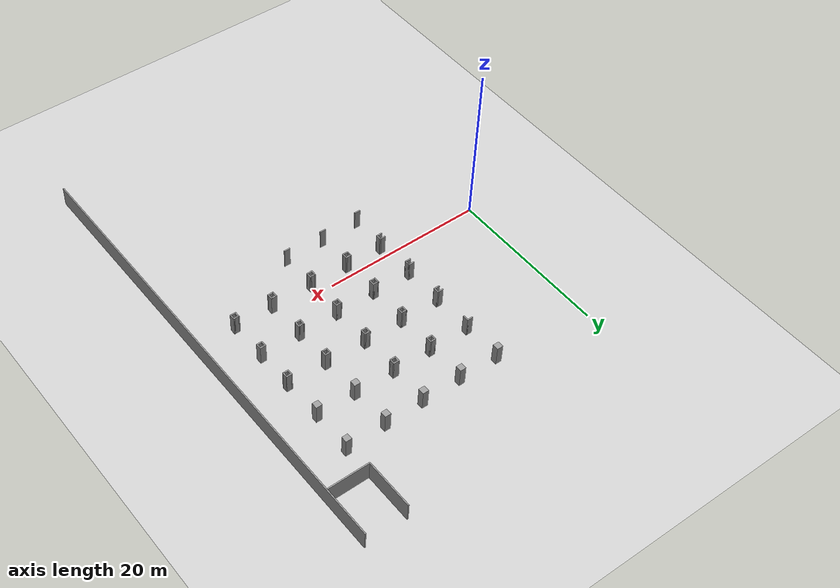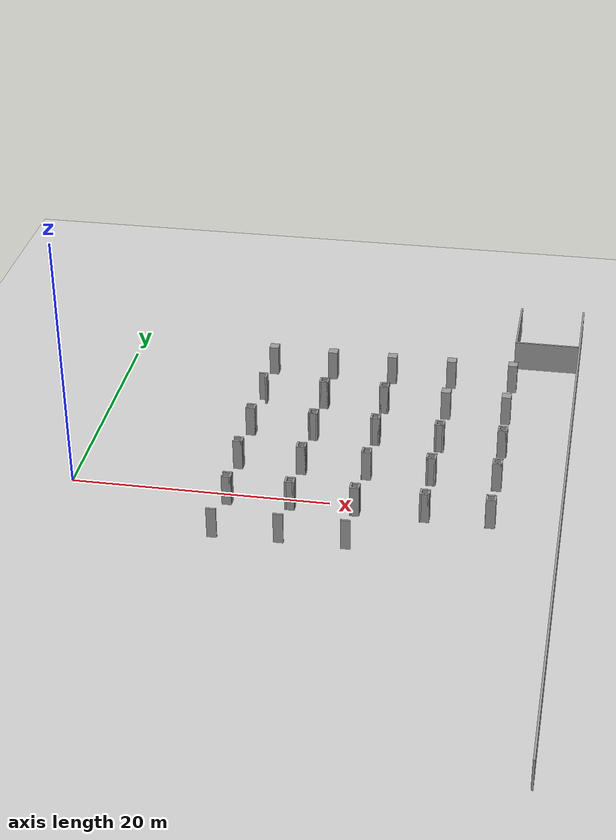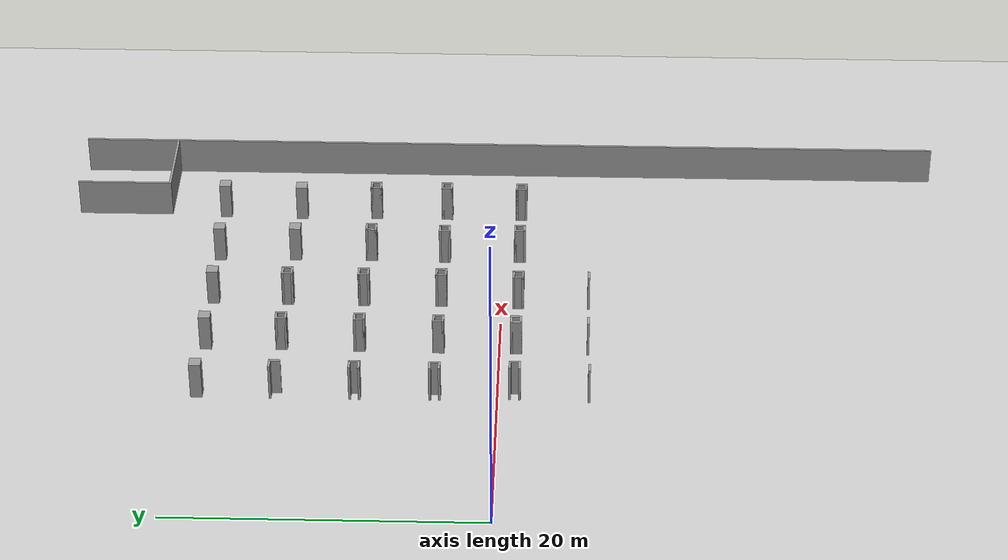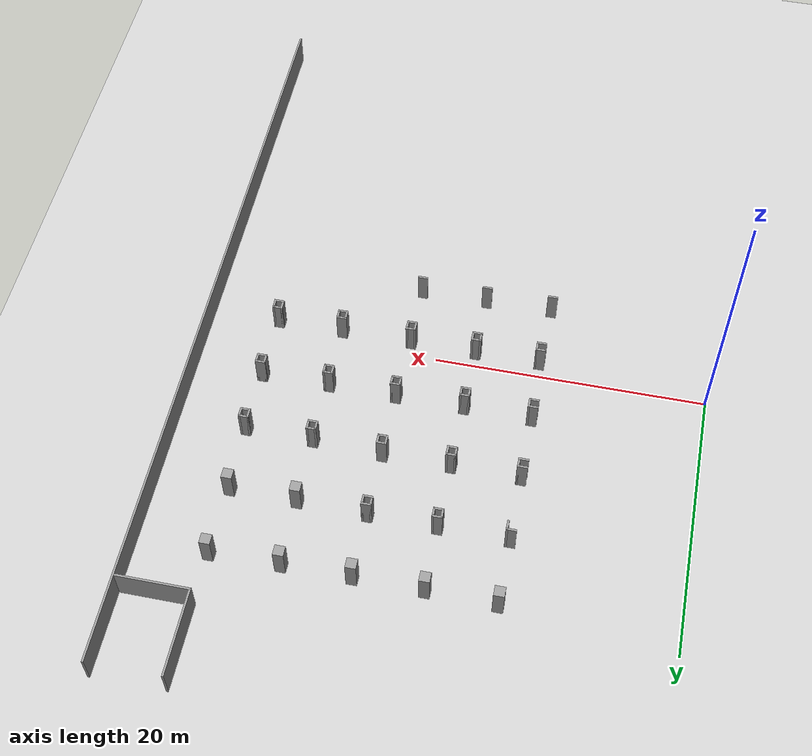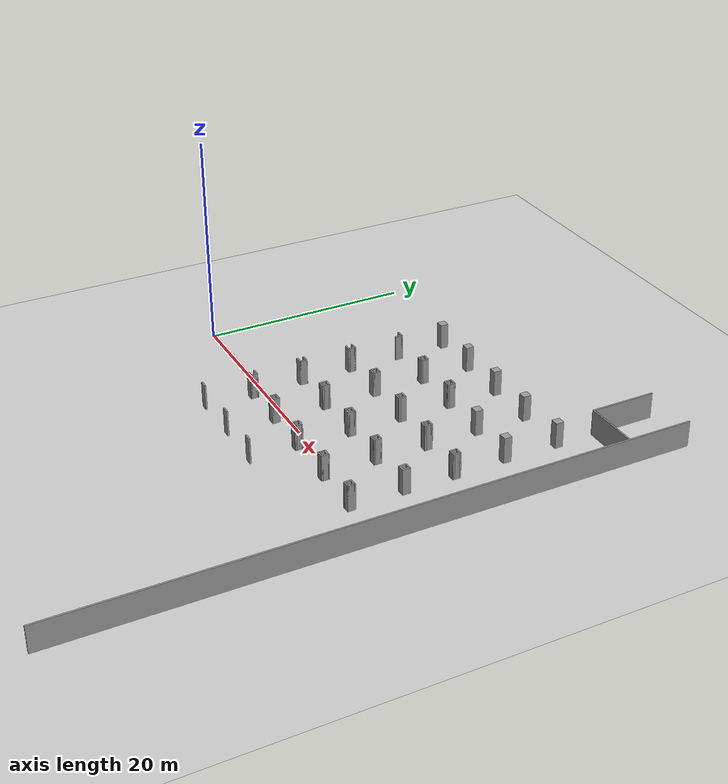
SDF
<sdf version="1.6">
 <world name="default">
  <model name="ground_plane">
   <static>1</static>
   <link name="link">
    <collision name="collision">
     <geometry><plane><normal>0 0 1</normal><size>100 100</size></plane></geometry>
     <surface>
      <contact><collide_bitmask>65535</collide_bitmask></contact>
      <friction><ode><mu>100</mu><mu2>50</mu2></ode></friction>
     </surface>
    </collision>
    <visual name="visual">
     <cast_shadows>0</cast_shadows>
     <geometry><plane><normal>0 0 1</normal><size>100 100</size></plane></geometry>
     <material>
      <script><uri>file://media/materials/scripts/gazebo.material</uri><name>Gazebo/Grey</name></script>
     </material>
    </visual>
   </link>
  </model>
  <model name="parking_area_big">
   <pose>0.030669 -0.012869 0 0 -0 0</pose>
   <link name="Wall_100">
    <collision name="Wall_100_Collision">
     <geometry><box><size>0.75 0.15 2.5</size></box></geometry>
     <pose>0 0 1.25 0 -0 0</pose>
    </collision>
    <visual name="Wall_100_Visual">
     <pose>0 0 1.25 0 -0 0</pose>
     <geometry><box><size>0.75 0.15 2.5</size></box></geometry>
     <material>
      <script><uri>file://media/materials/scripts/gazebo.material</uri><name>Gazebo/Grey</name></script>
      <ambient>1 1 1 1</ambient>
     </material>
     <meta><layer>0</layer></meta>
    </visual>
    <pose>27.266 -0.720336 0 0 -0 0</pose>
   </link>
   <link name="Wall_101">
    <collision name="Wall_101_Collision">
     <geometry><box><size>0.75 0.15 2.5</size></box></geometry>
     <pose>0 0 1.25 0 -0 0</pose>
    </collision>
    <visual name="Wall_101_Visual">
     <pose>0 0 1.25 0 -0 0</pose>
     <geometry><box><size>0.75 0.15 2.5</size></box></geometry>
     <material>
      <script><uri>file://media/materials/scripts/gazebo.material</uri><name>Gazebo/Grey</name></script>
      <ambient>1 1 1 1</ambient>
     </material>
     <meta><layer>0</layer></meta>
    </visual>
    <pose>27.566 -1.02034 0 0 -0 -1.5708</pose>
   </link>
   <link name="Wall_102">
    <collision name="Wall_102_Collision">
     <geometry><box><size>0.75 0.15 2.5</size></box></geometry>
     <pose>0 0 1.25 0 -0 0</pose>
    </collision>
    <visual name="Wall_102_Visual">
     <pose>0 0 1.25 0 -0 0</pose>
     <geometry><box><size>0.75 0.15 2.5</size></box></geometry>
     <material>
      <script><uri>file://media/materials/scripts/gazebo.material</uri><name>Gazebo/Grey</name></script>
      <ambient>1 1 1 1</ambient>
     </material>
     <meta><layer>0</layer></meta>
    </visual>
    <pose>27.266 -1.32034 0 0 -0 3.14159</pose>
   </link>
   <link name="Wall_103">
    <collision name="Wall_103_Collision">
     <geometry><box><size>0.75 0.15 2.5</size></box></geometry>
     <pose>0 0 1.25 0 -0 0</pose>
    </collision>
    <visual name="Wall_103_Visual">
     <pose>0 0 1.25 0 -0 0</pose>
     <geometry><box><size>0.75 0.15 2.5</size></box></geometry>
     <material>
      <script><uri>file://media/materials/scripts/gazebo.material</uri><name>Gazebo/Grey</name></script>
      <ambient>1 1 1 1</ambient>
     </material>
     <meta><layer>0</layer></meta>
    </visual>
    <pose>26.966 -1.02034 0 0 -0 1.5708</pose>
   </link>
   <link name="Wall_105">
    <collision name="Wall_105_Collision">
     <geometry><box><size>0.75 0.15 2.5</size></box></geometry>
     <pose>0 0 1.25 0 -0 0</pose>
    </collision>
    <visual name="Wall_105_Visual">
     <pose>0 0 1.25 0 -0 0</pose>
     <geometry><box><size>0.75 0.15 2.5</size></box></geometry>
     <material>
      <script><uri>file://media/materials/scripts/gazebo.material</uri><name>Gazebo/Grey</name></script>
      <ambient>1 1 1 1</ambient>
     </material>
     <meta><layer>0</layer></meta>
    </visual>
    <pose>32.1551 -0.719051 0 0 -0 0</pose>
   </link>
   <link name="Wall_106">
    <collision name="Wall_106_Collision">
     <geometry><box><size>0.75 0.15 2.5</size></box></geometry>
     <pose>0 0 1.25 0 -0 0</pose>
    </collision>
    <visual name="Wall_106_Visual">
     <pose>0 0 1.25 0 -0 0</pose>
     <geometry><box><size>0.75 0.15 2.5</size></box></geometry>
     <material>
      <script><uri>file://media/materials/scripts/gazebo.material</uri><name>Gazebo/Grey</name></script>
      <ambient>1 1 1 1</ambient>
     </material>
     <meta><layer>0</layer></meta>
    </visual>
    <pose>32.4551 -1.01905 0 0 -0 -1.5708</pose>
   </link>
   <link name="Wall_107">
    <collision name="Wall_107_Collision">
     <geometry><box><size>0.75 0.15 2.5</size></box></geometry>
     <pose>0 0 1.25 0 -0 0</pose>
    </collision>
    <visual name="Wall_107_Visual">
     <pose>0 0 1.25 0 -0 0</pose>
     <geometry><box><size>0.75 0.15 2.5</size></box></geometry>
     <material>
      <script><uri>file://media/materials/scripts/gazebo.material</uri><name>Gazebo/Grey</name></script>
      <ambient>1 1 1 1</ambient>
     </material>
     <meta><layer>0</layer></meta>
    </visual>
    <pose>32.1551 -1.31905 0 0 -0 3.14159</pose>
   </link>
   <link name="Wall_108">
    <collision name="Wall_108_Collision">
     <geometry><box><size>0.75 0.15 2.5</size></box></geometry>
     <pose>0 0 1.25 0 -0 0</pose>
    </collision>
    <visual name="Wall_108_Visual">
     <pose>0 0 1.25 0 -0 0</pose>
     <geometry><box><size>0.75 0.15 2.5</size></box></geometry>
     <material>
      <script><uri>file://media/materials/scripts/gazebo.material</uri><name>Gazebo/Grey</name></script>
      <ambient>1 1 1 1</ambient>
     </material>
     <meta><layer>0</layer></meta>
    </visual>
    <pose>31.8551 -1.01905 0 0 -0 1.5708</pose>
   </link>
   <link name="Wall_168">
    <collision name="Wall_168_Collision">
     <geometry><box><size>0.75 0.15 2.5</size></box></geometry>
     <pose>0 0 1.25 0 -0 0</pose>
    </collision>
    <visual name="Wall_168_Visual">
     <pose>0 0 1.25 0 -0 0</pose>
     <geometry><box><size>0.75 0.15 2.5</size></box></geometry>
     <material>
      <script><uri>file://media/materials/scripts/gazebo.material</uri><name>Gazebo/Grey</name></script>
      <ambient>1 1 1 1</ambient>
     </material>
     <meta><layer>0</layer></meta>
    </visual>
    <pose>12.3546 -0.734004 0 0 -0 0</pose>
   </link>
   <link name="Wall_169">
    <collision name="Wall_169_Collision">
     <geometry><box><size>0.75 0.15 2.5</size></box></geometry>
     <pose>0 0 1.25 0 -0 0</pose>
    </collision>
    <visual name="Wall_169_Visual">
     <pose>0 0 1.25 0 -0 0</pose>
     <geometry><box><size>0.75 0.15 2.5</size></box></geometry>
     <material>
      <script><uri>file://media/materials/scripts/gazebo.material</uri><name>Gazebo/Grey</name></script>
      <ambient>1 1 1 1</ambient>
     </material>
     <meta><layer>0</layer></meta>
    </visual>
    <pose>12.6546 -1.034 0 0 -0 -1.5708</pose>
   </link>
   <link name="Wall_170">
    <collision name="Wall_170_Collision">
     <geometry><box><size>0.75 0.15 2.5</size></box></geometry>
     <pose>0 0 1.25 0 -0 0</pose>
    </collision>
    <visual name="Wall_170_Visual">
     <pose>0 0 1.25 0 -0 0</pose>
     <geometry><box><size>0.75 0.15 2.5</size></box></geometry>
     <material>
      <script><uri>file://media/materials/scripts/gazebo.material</uri><name>Gazebo/Grey</name></script>
      <ambient>1 1 1 1</ambient>
     </material>
     <meta><layer>0</layer></meta>
    </visual>
    <pose>12.3546 -1.334 0 0 -0 3.14159</pose>
   </link>
   <link name="Wall_178">
    <collision name="Wall_178_Collision">
     <geometry><box><size>0.75 0.15 2.5</size></box></geometry>
     <pose>0 0 1.25 0 -0 0</pose>
    </collision>
    <visual name="Wall_178_Visual">
     <pose>0 0 1.25 0 -0 0</pose>
     <geometry><box><size>0.75 0.15 2.5</size></box></geometry>
     <material>
      <script><uri>file://media/materials/scripts/gazebo.material</uri><name>Gazebo/Grey</name></script>
      <ambient>1 1 1 1</ambient>
     </material>
     <meta><layer>0</layer></meta>
    </visual>
    <pose>12.1706 -5.679 0 0 -0 0</pose>
   </link>
   <link name="Wall_18">
    <collision name="Wall_18_Collision">
     <geometry><box><size>57.75 0.15 2.5</size></box></geometry>
     <pose>0 0 1.25 0 -0 0</pose>
    </collision>
    <visual name="Wall_18_Visual">
     <pose>0 0 1.25 0 -0 0</pose>
     <geometry><box><size>57.75 0.15 2.5</size></box></geometry>
     <material>
      <script><uri>file://media/materials/scripts/gazebo.material</uri><name>Gazebo/Grey</name></script>
      <ambient>1 1 1 1</ambient>
     </material>
     <meta><layer>0</layer></meta>
    </visual>
    <pose>37.3314 0.011069 0 0 -0 -1.5708</pose>
   </link>
   <link name="Wall_183">
    <collision name="Wall_183_Collision">
     <geometry><box><size>0.75 0.15 2.5</size></box></geometry>
     <pose>0 0 1.25 0 -0 0</pose>
    </collision>
    <visual name="Wall_183_Visual">
     <pose>0 0 1.25 0 -0 0</pose>
     <geometry><box><size>0.75 0.15 2.5</size></box></geometry>
     <material>
      <script><uri>file://media/materials/scripts/gazebo.material</uri><name>Gazebo/Grey</name></script>
      <ambient>1 1 1 1</ambient>
     </material>
     <meta><layer>0</layer></meta>
    </visual>
    <pose>17.1156 -5.587 0 0 -0 0</pose>
   </link>
   <link name="Wall_188">
    <collision name="Wall_188_Collision">
     <geometry><box><size>0.75 0.15 2.5</size></box></geometry>
     <pose>0 0 1.25 0 -0 0</pose>
    </collision>
    <visual name="Wall_188_Visual">
     <pose>0 0 1.25 0 -0 0</pose>
     <geometry><box><size>0.75 0.15 2.5</size></box></geometry>
     <material>
      <script><uri>file://media/materials/scripts/gazebo.material</uri><name>Gazebo/Grey</name></script>
      <ambient>1 1 1 1</ambient>
     </material>
     <meta><layer>0</layer></meta>
    </visual>
    <pose>22.0606 -5.587 0 0 -0 0</pose>
   </link>
   <link name="Wall_193">
    <collision name="Wall_193_Collision">
     <geometry><box><size>0.75 0.15 2.5</size></box></geometry>
     <pose>0 0 1.25 0 -0 0</pose>
    </collision>
    <visual name="Wall_193_Visual">
     <pose>0 0 1.25 0 -0 0</pose>
     <geometry><box><size>0.75 0.15 2.5</size></box></geometry>
     <material>
      <script><uri>file://media/materials/scripts/gazebo.material</uri><name>Gazebo/Grey</name></script>
      <ambient>1 1 1 1</ambient>
     </material>
     <meta><layer>0</layer></meta>
    </visual>
    <pose>22.0376 -0.734004 0 0 -0 0</pose>
   </link>
   <link name="Wall_194">
    <collision name="Wall_194_Collision">
     <geometry><box><size>0.75 0.15 2.5</size></box></geometry>
     <pose>0 0 1.25 0 -0 0</pose>
    </collision>
    <visual name="Wall_194_Visual">
     <pose>0 0 1.25 0 -0 0</pose>
     <geometry><box><size>0.75 0.15 2.5</size></box></geometry>
     <material>
      <script><uri>file://media/materials/scripts/gazebo.material</uri><name>Gazebo/Grey</name></script>
      <ambient>1 1 1 1</ambient>
     </material>
     <meta><layer>0</layer></meta>
    </visual>
    <pose>22.3376 -1.034 0 0 -0 -1.5708</pose>
   </link>
   <link name="Wall_195">
    <collision name="Wall_195_Collision">
     <geometry><box><size>0.75 0.15 2.5</size></box></geometry>
     <pose>0 0 1.25 0 -0 0</pose>
    </collision>
    <visual name="Wall_195_Visual">
     <pose>0 0 1.25 0 -0 0</pose>
     <geometry><box><size>0.75 0.15 2.5</size></box></geometry>
     <material>
      <script><uri>file://media/materials/scripts/gazebo.material</uri><name>Gazebo/Grey</name></script>
      <ambient>1 1 1 1</ambient>
     </material>
     <meta><layer>0</layer></meta>
    </visual>
    <pose>22.0376 -1.334 0 0 -0 3.14159</pose>
   </link>
   <link name="Wall_196">
    <collision name="Wall_196_Collision">
     <geometry><box><size>0.75 0.15 2.5</size></box></geometry>
     <pose>0 0 1.25 0 -0 0</pose>
    </collision>
    <visual name="Wall_196_Visual">
     <pose>0 0 1.25 0 -0 0</pose>
     <geometry><box><size>0.75 0.15 2.5</size></box></geometry>
     <material>
      <script><uri>file://media/materials/scripts/gazebo.material</uri><name>Gazebo/Grey</name></script>
      <ambient>1 1 1 1</ambient>
     </material>
     <meta><layer>0</layer></meta>
    </visual>
    <pose>21.7376 -1.034 0 0 -0 1.5708</pose>
   </link>
   <link name="Wall_198">
    <collision name="Wall_198_Collision">
     <geometry><box><size>0.75 0.15 2.5</size></box></geometry>
     <pose>0 0 1.25 0 -0 0</pose>
    </collision>
    <visual name="Wall_198_Visual">
     <pose>0 0 1.25 0 -0 0</pose>
     <geometry><box><size>0.75 0.15 2.5</size></box></geometry>
     <material>
      <script><uri>file://media/materials/scripts/gazebo.material</uri><name>Gazebo/Grey</name></script>
      <ambient>1 1 1 1</ambient>
     </material>
     <meta><layer>0</layer></meta>
    </visual>
    <pose>17.1386 -0.711004 0 0 -0 0</pose>
   </link>
   <link name="Wall_199">
    <collision name="Wall_199_Collision">
     <geometry><box><size>0.75 0.15 2.5</size></box></geometry>
     <pose>0 0 1.25 0 -0 0</pose>
    </collision>
    <visual name="Wall_199_Visual">
     <pose>0 0 1.25 0 -0 0</pose>
     <geometry><box><size>0.75 0.15 2.5</size></box></geometry>
     <material>
      <script><uri>file://media/materials/scripts/gazebo.material</uri><name>Gazebo/Grey</name></script>
      <ambient>1 1 1 1</ambient>
     </material>
     <meta><layer>0</layer></meta>
    </visual>
    <pose>17.4386 -1.011 0 0 -0 -1.5708</pose>
   </link>
   <link name="Wall_200">
    <collision name="Wall_200_Collision">
     <geometry><box><size>0.75 0.15 2.5</size></box></geometry>
     <pose>0 0 1.25 0 -0 0</pose>
    </collision>
    <visual name="Wall_200_Visual">
     <pose>0 0 1.25 0 -0 0</pose>
     <geometry><box><size>0.75 0.15 2.5</size></box></geometry>
     <material>
      <script><uri>file://media/materials/scripts/gazebo.material</uri><name>Gazebo/Grey</name></script>
      <ambient>1 1 1 1</ambient>
     </material>
     <meta><layer>0</layer></meta>
    </visual>
    <pose>17.1386 -1.311 0 0 -0 3.14159</pose>
   </link>
   <link name="Wall_201">
    <collision name="Wall_201_Collision">
     <geometry><box><size>0.75 0.15 2.5</size></box></geometry>
     <pose>0 0 1.25 0 -0 0</pose>
    </collision>
    <visual name="Wall_201_Visual">
     <pose>0 0 1.25 0 -0 0</pose>
     <geometry><box><size>0.75 0.15 2.5</size></box></geometry>
     <material>
      <script><uri>file://media/materials/scripts/gazebo.material</uri><name>Gazebo/Grey</name></script>
      <ambient>1 1 1 1</ambient>
     </material>
     <meta><layer>0</layer></meta>
    </visual>
    <pose>16.8386 -1.011 0 0 -0 1.5708</pose>
   </link>
   <link name="Wall_243">
    <collision name="Wall_243_Collision">
     <geometry><box><size>0.75 0.15 2.5</size></box></geometry>
     <pose>0 0 1.25 0 -0 0</pose>
    </collision>
    <visual name="Wall_243_Visual">
     <pose>0 0 1.25 0 -0 0</pose>
     <geometry><box><size>0.75 0.15 2.5</size></box></geometry>
     <material>
      <script><uri>file://media/materials/scripts/gazebo.material</uri><name>Gazebo/Grey</name></script>
      <ambient>1 1 1 1</ambient>
     </material>
     <meta><layer>0</layer></meta>
    </visual>
    <pose>12.1724 4.25145 0 0 -0 0</pose>
   </link>
   <link name="Wall_244">
    <collision name="Wall_244_Collision">
     <geometry><box><size>0.75 0.15 2.5</size></box></geometry>
     <pose>0 0 1.25 0 -0 0</pose>
    </collision>
    <visual name="Wall_244_Visual">
     <pose>0 0 1.25 0 -0 0</pose>
     <geometry><box><size>0.75 0.15 2.5</size></box></geometry>
     <material>
      <script><uri>file://media/materials/scripts/gazebo.material</uri><name>Gazebo/Grey</name></script>
      <ambient>1 1 1 1</ambient>
     </material>
     <meta><layer>0</layer></meta>
    </visual>
    <pose>12.4724 3.95145 0 0 -0 -1.5708</pose>
   </link>
   <link name="Wall_245">
    <collision name="Wall_245_Collision">
     <geometry><box><size>0.75 0.15 2.5</size></box></geometry>
     <pose>0 0 1.25 0 -0 0</pose>
    </collision>
    <visual name="Wall_245_Visual">
     <pose>0 0 1.25 0 -0 0</pose>
     <geometry><box><size>0.75 0.15 2.5</size></box></geometry>
     <material>
      <script><uri>file://media/materials/scripts/gazebo.material</uri><name>Gazebo/Grey</name></script>
      <ambient>1 1 1 1</ambient>
     </material>
     <meta><layer>0</layer></meta>
    </visual>
    <pose>12.1724 3.65145 0 0 -0 3.14159</pose>
   </link>
   <link name="Wall_248">
    <collision name="Wall_248_Collision">
     <geometry><box><size>0.75 0.15 2.5</size></box></geometry>
     <pose>0 0 1.25 0 -0 0</pose>
    </collision>
    <visual name="Wall_248_Visual">
     <pose>0 0 1.25 0 -0 0</pose>
     <geometry><box><size>0.75 0.15 2.5</size></box></geometry>
     <material>
      <script><uri>file://media/materials/scripts/gazebo.material</uri><name>Gazebo/Grey</name></script>
      <ambient>1 1 1 1</ambient>
     </material>
     <meta><layer>0</layer></meta>
    </visual>
    <pose>12.1459 9.2505 0 0 -0 0</pose>
   </link>
   <link name="Wall_249">
    <collision name="Wall_249_Collision">
     <geometry><box><size>0.75 0.15 2.5</size></box></geometry>
     <pose>0 0 1.25 0 -0 0</pose>
    </collision>
    <visual name="Wall_249_Visual">
     <pose>0 0 1.25 0 -0 0</pose>
     <geometry><box><size>0.75 0.15 2.5</size></box></geometry>
     <material>
      <script><uri>file://media/materials/scripts/gazebo.material</uri><name>Gazebo/Grey</name></script>
      <ambient>1 1 1 1</ambient>
     </material>
     <meta><layer>0</layer></meta>
    </visual>
    <pose>12.4459 8.9505 0 0 -0 -1.5708</pose>
   </link>
   <link name="Wall_250">
    <collision name="Wall_250_Collision">
     <geometry><box><size>0.75 0.15 2.5</size></box></geometry>
     <pose>0 0 1.25 0 -0 0</pose>
    </collision>
    <visual name="Wall_250_Visual">
     <pose>0 0 1.25 0 -0 0</pose>
     <geometry><box><size>0.75 0.15 2.5</size></box></geometry>
     <material>
      <script><uri>file://media/materials/scripts/gazebo.material</uri><name>Gazebo/Grey</name></script>
      <ambient>1 1 1 1</ambient>
     </material>
     <meta><layer>0</layer></meta>
    </visual>
    <pose>12.1459 8.6505 0 0 -0 3.14159</pose>
   </link>
   <link name="Wall_253">
    <collision name="Wall_253_Collision">
     <geometry><box><size>0.75 0.15 2.5</size></box></geometry>
     <pose>0 0 1.25 0 -0 0</pose>
    </collision>
    <visual name="Wall_253_Visual">
     <pose>0 0 1.25 0 -0 0</pose>
     <geometry><box><size>0.75 0.15 2.5</size></box></geometry>
     <material>
      <script><uri>file://media/materials/scripts/gazebo.material</uri><name>Gazebo/Grey</name></script>
      <ambient>1 1 1 1</ambient>
     </material>
     <meta><layer>0</layer></meta>
    </visual>
    <pose>17.1714 9.2505 0 0 -0 0</pose>
   </link>
   <link name="Wall_254">
    <collision name="Wall_254_Collision">
     <geometry><box><size>0.75 0.15 2.5</size></box></geometry>
     <pose>0 0 1.25 0 -0 0</pose>
    </collision>
    <visual name="Wall_254_Visual">
     <pose>0 0 1.25 0 -0 0</pose>
     <geometry><box><size>0.75 0.15 2.5</size></box></geometry>
     <material>
      <script><uri>file://media/materials/scripts/gazebo.material</uri><name>Gazebo/Grey</name></script>
      <ambient>1 1 1 1</ambient>
     </material>
     <meta><layer>0</layer></meta>
    </visual>
    <pose>17.4714 8.9505 0 0 -0 -1.5708</pose>
   </link>
   <link name="Wall_255">
    <collision name="Wall_255_Collision">
     <geometry><box><size>0.75 0.15 2.5</size></box></geometry>
     <pose>0 0 1.25 0 -0 0</pose>
    </collision>
    <visual name="Wall_255_Visual">
     <pose>0 0 1.25 0 -0 0</pose>
     <geometry><box><size>0.75 0.15 2.5</size></box></geometry>
     <material>
      <script><uri>file://media/materials/scripts/gazebo.material</uri><name>Gazebo/Grey</name></script>
      <ambient>1 1 1 1</ambient>
     </material>
     <meta><layer>0</layer></meta>
    </visual>
    <pose>17.1714 8.6505 0 0 -0 3.14159</pose>
   </link>
   <link name="Wall_256">
    <collision name="Wall_256_Collision">
     <geometry><box><size>0.75 0.15 2.5</size></box></geometry>
     <pose>0 0 1.25 0 -0 0</pose>
    </collision>
    <visual name="Wall_256_Visual">
     <pose>0 0 1.25 0 -0 0</pose>
     <geometry><box><size>0.75 0.15 2.5</size></box></geometry>
     <material>
      <script><uri>file://media/materials/scripts/gazebo.material</uri><name>Gazebo/Grey</name></script>
      <ambient>1 1 1 1</ambient>
     </material>
     <meta><layer>0</layer></meta>
    </visual>
    <pose>16.8714 8.9505 0 0 -0 1.5708</pose>
   </link>
   <link name="Wall_258">
    <collision name="Wall_258_Collision">
     <geometry><box><size>0.75 0.15 2.5</size></box></geometry>
     <pose>0 0 1.25 0 -0 0</pose>
    </collision>
    <visual name="Wall_258_Visual">
     <pose>0 0 1.25 0 -0 0</pose>
     <geometry><box><size>0.75 0.15 2.5</size></box></geometry>
     <material>
      <script><uri>file://media/materials/scripts/gazebo.material</uri><name>Gazebo/Grey</name></script>
      <ambient>1 1 1 1</ambient>
     </material>
     <meta><layer>0</layer></meta>
    </visual>
    <pose>22.1176 9.27695 0 0 -0 0</pose>
   </link>
   <link name="Wall_259">
    <collision name="Wall_259_Collision">
     <geometry><box><size>0.75 0.15 2.5</size></box></geometry>
     <pose>0 0 1.25 0 -0 0</pose>
    </collision>
    <visual name="Wall_259_Visual">
     <pose>0 0 1.25 0 -0 0</pose>
     <geometry><box><size>0.75 0.15 2.5</size></box></geometry>
     <material>
      <script><uri>file://media/materials/scripts/gazebo.material</uri><name>Gazebo/Grey</name></script>
      <ambient>1 1 1 1</ambient>
     </material>
     <meta><layer>0</layer></meta>
    </visual>
    <pose>22.4176 8.97695 0 0 -0 -1.5708</pose>
   </link>
   <link name="Wall_260">
    <collision name="Wall_260_Collision">
     <geometry><box><size>0.75 0.15 2.5</size></box></geometry>
     <pose>0 0 1.25 0 -0 0</pose>
    </collision>
    <visual name="Wall_260_Visual">
     <pose>0 0 1.25 0 -0 0</pose>
     <geometry><box><size>0.75 0.15 2.5</size></box></geometry>
     <material>
      <script><uri>file://media/materials/scripts/gazebo.material</uri><name>Gazebo/Grey</name></script>
      <ambient>1 1 1 1</ambient>
     </material>
     <meta><layer>0</layer></meta>
    </visual>
    <pose>22.1176 8.67695 0 0 -0 3.14159</pose>
   </link>
   <link name="Wall_261">
    <collision name="Wall_261_Collision">
     <geometry><box><size>0.75 0.15 2.5</size></box></geometry>
     <pose>0 0 1.25 0 -0 0</pose>
    </collision>
    <visual name="Wall_261_Visual">
     <pose>0 0 1.25 0 -0 0</pose>
     <geometry><box><size>0.75 0.15 2.5</size></box></geometry>
     <material>
      <script><uri>file://media/materials/scripts/gazebo.material</uri><name>Gazebo/Grey</name></script>
      <ambient>1 1 1 1</ambient>
     </material>
     <meta><layer>0</layer></meta>
    </visual>
    <pose>21.8176 8.97695 0 0 -0 1.5708</pose>
   </link>
   <link name="Wall_263">
    <collision name="Wall_263_Collision">
     <geometry><box><size>0.75 0.15 2.5</size></box></geometry>
     <pose>0 0 1.25 0 -0 0</pose>
    </collision>
    <visual name="Wall_263_Visual">
     <pose>0 0 1.25 0 -0 0</pose>
     <geometry><box><size>0.75 0.15 2.5</size></box></geometry>
     <material>
      <script><uri>file://media/materials/scripts/gazebo.material</uri><name>Gazebo/Grey</name></script>
      <ambient>1 1 1 1</ambient>
     </material>
     <meta><layer>0</layer></meta>
    </visual>
    <pose>17.1185 4.225 0 0 -0 0</pose>
   </link>
   <link name="Wall_264">
    <collision name="Wall_264_Collision">
     <geometry><box><size>0.75 0.15 2.5</size></box></geometry>
     <pose>0 0 1.25 0 -0 0</pose>
    </collision>
    <visual name="Wall_264_Visual">
     <pose>0 0 1.25 0 -0 0</pose>
     <geometry><box><size>0.75 0.15 2.5</size></box></geometry>
     <material>
      <script><uri>file://media/materials/scripts/gazebo.material</uri><name>Gazebo/Grey</name></script>
      <ambient>1 1 1 1</ambient>
     </material>
     <meta><layer>0</layer></meta>
    </visual>
    <pose>17.4185 3.925 0 0 -0 -1.5708</pose>
   </link>
   <link name="Wall_265">
    <collision name="Wall_265_Collision">
     <geometry><box><size>0.75 0.15 2.5</size></box></geometry>
     <pose>0 0 1.25 0 -0 0</pose>
    </collision>
    <visual name="Wall_265_Visual">
     <pose>0 0 1.25 0 -0 0</pose>
     <geometry><box><size>0.75 0.15 2.5</size></box></geometry>
     <material>
      <script><uri>file://media/materials/scripts/gazebo.material</uri><name>Gazebo/Grey</name></script>
      <ambient>1 1 1 1</ambient>
     </material>
     <meta><layer>0</layer></meta>
    </visual>
    <pose>17.1185 3.625 0 0 -0 3.14159</pose>
   </link>
   <link name="Wall_266">
    <collision name="Wall_266_Collision">
     <geometry><box><size>0.75 0.15 2.5</size></box></geometry>
     <pose>0 0 1.25 0 -0 0</pose>
    </collision>
    <visual name="Wall_266_Visual">
     <pose>0 0 1.25 0 -0 0</pose>
     <geometry><box><size>0.75 0.15 2.5</size></box></geometry>
     <material>
      <script><uri>file://media/materials/scripts/gazebo.material</uri><name>Gazebo/Grey</name></script>
      <ambient>1 1 1 1</ambient>
     </material>
     <meta><layer>0</layer></meta>
    </visual>
    <pose>16.8185 3.925 0 0 -0 1.5708</pose>
   </link>
   <link name="Wall_268">
    <collision name="Wall_268_Collision">
     <geometry><box><size>0.75 0.15 2.5</size></box></geometry>
     <pose>0 0 1.25 0 -0 0</pose>
    </collision>
    <visual name="Wall_268_Visual">
     <pose>0 0 1.25 0 -0 0</pose>
     <geometry><box><size>0.75 0.15 2.5</size></box></geometry>
     <material>
      <script><uri>file://media/materials/scripts/gazebo.material</uri><name>Gazebo/Grey</name></script>
      <ambient>1 1 1 1</ambient>
     </material>
     <meta><layer>0</layer></meta>
    </visual>
    <pose>22.1705 4.25145 0 0 -0 0</pose>
   </link>
   <link name="Wall_269">
    <collision name="Wall_269_Collision">
     <geometry><box><size>0.75 0.15 2.5</size></box></geometry>
     <pose>0 0 1.25 0 -0 0</pose>
    </collision>
    <visual name="Wall_269_Visual">
     <pose>0 0 1.25 0 -0 0</pose>
     <geometry><box><size>0.75 0.15 2.5</size></box></geometry>
     <material>
      <script><uri>file://media/materials/scripts/gazebo.material</uri><name>Gazebo/Grey</name></script>
      <ambient>1 1 1 1</ambient>
     </material>
     <meta><layer>0</layer></meta>
    </visual>
    <pose>22.4705 3.95145 0 0 -0 -1.5708</pose>
   </link>
   <link name="Wall_270">
    <collision name="Wall_270_Collision">
     <geometry><box><size>0.75 0.15 2.5</size></box></geometry>
     <pose>0 0 1.25 0 -0 0</pose>
    </collision>
    <visual name="Wall_270_Visual">
     <pose>0 0 1.25 0 -0 0</pose>
     <geometry><box><size>0.75 0.15 2.5</size></box></geometry>
     <material>
      <script><uri>file://media/materials/scripts/gazebo.material</uri><name>Gazebo/Grey</name></script>
      <ambient>1 1 1 1</ambient>
     </material>
     <meta><layer>0</layer></meta>
    </visual>
    <pose>22.1705 3.65145 0 0 -0 3.14159</pose>
   </link>
   <link name="Wall_271">
    <collision name="Wall_271_Collision">
     <geometry><box><size>0.75 0.15 2.5</size></box></geometry>
     <pose>0 0 1.25 0 -0 0</pose>
    </collision>
    <visual name="Wall_271_Visual">
     <pose>0 0 1.25 0 -0 0</pose>
     <geometry><box><size>0.75 0.15 2.5</size></box></geometry>
     <material>
      <script><uri>file://media/materials/scripts/gazebo.material</uri><name>Gazebo/Grey</name></script>
      <ambient>1 1 1 1</ambient>
     </material>
     <meta><layer>0</layer></meta>
    </visual>
    <pose>21.8705 3.95145 0 0 -0 1.5708</pose>
   </link>
   <link name="Wall_292">
    <collision name="Wall_292_Collision">
     <geometry><box><size>0.75 0.15 2.5</size></box></geometry>
     <pose>0 0 1.25 0 -0 0</pose>
    </collision>
    <visual name="Wall_292_Visual">
     <pose>0 0 1.25 0 -0 0</pose>
     <geometry><box><size>0.75 0.15 2.5</size></box></geometry>
     <material>
      <script><uri>file://media/materials/scripts/gazebo.material</uri><name>Gazebo/Grey</name></script>
      <ambient>1 1 1 1</ambient>
     </material>
     <meta><layer>0</layer></meta>
    </visual>
    <pose>12.1195 14.2231 0 0 -0 0</pose>
   </link>
   <link name="Wall_293">
    <collision name="Wall_293_Collision">
     <geometry><box><size>0.75 0.15 2.5</size></box></geometry>
     <pose>0 0 1.25 0 -0 0</pose>
    </collision>
    <visual name="Wall_293_Visual">
     <pose>0 0 1.25 0 -0 0</pose>
     <geometry><box><size>0.75 0.15 2.5</size></box></geometry>
     <material>
      <script><uri>file://media/materials/scripts/gazebo.material</uri><name>Gazebo/Grey</name></script>
      <ambient>1 1 1 1</ambient>
     </material>
     <meta><layer>0</layer></meta>
    </visual>
    <pose>12.4195 13.9231 0 0 -0 -1.5708</pose>
   </link>
   <link name="Wall_297">
    <collision name="Wall_297_Collision">
     <geometry><box><size>0.75 0.15 2.5</size></box></geometry>
     <pose>0 0 1.25 0 -0 0</pose>
    </collision>
    <visual name="Wall_297_Visual">
     <pose>0 0 1.25 0 -0 0</pose>
     <geometry><box><size>0.75 0.15 2.5</size></box></geometry>
     <material>
      <script><uri>file://media/materials/scripts/gazebo.material</uri><name>Gazebo/Grey</name></script>
      <ambient>1 1 1 1</ambient>
     </material>
     <meta><layer>0</layer></meta>
    </visual>
    <pose>17.1979 14.2231 0 0 -0 0</pose>
   </link>
   <link name="Wall_298">
    <collision name="Wall_298_Collision">
     <geometry><box><size>0.75 0.15 2.5</size></box></geometry>
     <pose>0 0 1.25 0 -0 0</pose>
    </collision>
    <visual name="Wall_298_Visual">
     <pose>0 0 1.25 0 -0 0</pose>
     <geometry><box><size>0.75 0.15 2.5</size></box></geometry>
     <material>
      <script><uri>file://media/materials/scripts/gazebo.material</uri><name>Gazebo/Grey</name></script>
      <ambient>1 1 1 1</ambient>
     </material>
     <meta><layer>0</layer></meta>
    </visual>
    <pose>17.4979 13.9231 0 0 -0 -1.5708</pose>
   </link>
   <link name="Wall_299">
    <collision name="Wall_299_Collision">
     <geometry><box><size>0.75 0.15 2.5</size></box></geometry>
     <pose>0 0 1.25 0 -0 0</pose>
    </collision>
    <visual name="Wall_299_Visual">
     <pose>0 0 1.25 0 -0 0</pose>
     <geometry><box><size>0.75 0.15 2.5</size></box></geometry>
     <material>
      <script><uri>file://media/materials/scripts/gazebo.material</uri><name>Gazebo/Grey</name></script>
      <ambient>1 1 1 1</ambient>
     </material>
     <meta><layer>0</layer></meta>
    </visual>
    <pose>17.1979 13.6231 0 0 -0 3.14159</pose>
   </link>
   <link name="Wall_300">
    <collision name="Wall_300_Collision">
     <geometry><box><size>0.75 0.15 2.5</size></box></geometry>
     <pose>0 0 1.25 0 -0 0</pose>
    </collision>
    <visual name="Wall_300_Visual">
     <pose>0 0 1.25 0 -0 0</pose>
     <geometry><box><size>0.75 0.15 2.5</size></box></geometry>
     <material>
      <script><uri>file://media/materials/scripts/gazebo.material</uri><name>Gazebo/Grey</name></script>
      <ambient>1 1 1 1</ambient>
     </material>
     <meta><layer>0</layer></meta>
    </visual>
    <pose>16.8979 13.9231 0 0 -0 1.5708</pose>
   </link>
   <link name="Wall_302">
    <collision name="Wall_302_Collision">
     <geometry><box><size>0.75 0.15 2.5</size></box></geometry>
     <pose>0 0 1.25 0 -0 0</pose>
    </collision>
    <visual name="Wall_302_Visual">
     <pose>0 0 1.25 0 -0 0</pose>
     <geometry><box><size>0.75 0.15 2.5</size></box></geometry>
     <material>
      <script><uri>file://media/materials/scripts/gazebo.material</uri><name>Gazebo/Grey</name></script>
      <ambient>1 1 1 1</ambient>
     </material>
     <meta><layer>0</layer></meta>
    </visual>
    <pose>22.1176 14.2231 0 0 -0 0</pose>
   </link>
   <link name="Wall_303">
    <collision name="Wall_303_Collision">
     <geometry><box><size>0.75 0.15 2.5</size></box></geometry>
     <pose>0 0 1.25 0 -0 0</pose>
    </collision>
    <visual name="Wall_303_Visual">
     <pose>0 0 1.25 0 -0 0</pose>
     <geometry><box><size>0.75 0.15 2.5</size></box></geometry>
     <material>
      <script><uri>file://media/materials/scripts/gazebo.material</uri><name>Gazebo/Grey</name></script>
      <ambient>1 1 1 1</ambient>
     </material>
     <meta><layer>0</layer></meta>
    </visual>
    <pose>22.4176 13.9231 0 0 -0 -1.5708</pose>
   </link>
   <link name="Wall_304">
    <collision name="Wall_304_Collision">
     <geometry><box><size>0.75 0.15 2.5</size></box></geometry>
     <pose>0 0 1.25 0 -0 0</pose>
    </collision>
    <visual name="Wall_304_Visual">
     <pose>0 0 1.25 0 -0 0</pose>
     <geometry><box><size>0.75 0.15 2.5</size></box></geometry>
     <material>
      <script><uri>file://media/materials/scripts/gazebo.material</uri><name>Gazebo/Grey</name></script>
      <ambient>1 1 1 1</ambient>
     </material>
     <meta><layer>0</layer></meta>
    </visual>
    <pose>22.1176 13.6231 0 0 -0 3.14159</pose>
   </link>
   <link name="Wall_305">
    <collision name="Wall_305_Collision">
     <geometry><box><size>0.75 0.15 2.5</size></box></geometry>
     <pose>0 0 1.25 0 -0 0</pose>
    </collision>
    <visual name="Wall_305_Visual">
     <pose>0 0 1.25 0 -0 0</pose>
     <geometry><box><size>0.75 0.15 2.5</size></box></geometry>
     <material>
      <script><uri>file://media/materials/scripts/gazebo.material</uri><name>Gazebo/Grey</name></script>
      <ambient>1 1 1 1</ambient>
     </material>
     <meta><layer>0</layer></meta>
    </visual>
    <pose>21.8176 13.9231 0 0 -0 1.5708</pose>
   </link>
   <link name="Wall_40">
    <collision name="Wall_40_Collision">
     <geometry><box><size>6.25 0.15 2.5</size></box></geometry>
     <pose>0 0 1.25 0 -0 0</pose>
    </collision>
    <visual name="Wall_40_Visual">
     <pose>0 0 1.25 0 -0 0</pose>
     <geometry><box><size>6.25 0.15 2.5</size></box></geometry>
     <material>
      <script><uri>file://media/materials/scripts/gazebo.material</uri><name>Gazebo/Grey</name></script>
      <ambient>1 1 1 1</ambient>
     </material>
     <meta><layer>0</layer></meta>
    </visual>
    <pose>32.051 25.6981 0 0 -0 -1.5708</pose>
   </link>
   <link name="Wall_41">
    <collision name="Wall_41_Collision">
     <geometry><box><size>5.30113 0.15 2.5</size></box></geometry>
     <pose>0 0 1.25 0 -0 0</pose>
    </collision>
    <visual name="Wall_41_Visual">
     <pose>0 0 1.25 0 -0 0</pose>
     <geometry><box><size>5.30113 0.15 2.5</size></box></geometry>
     <material>
      <script><uri>file://media/materials/scripts/gazebo.material</uri><name>Gazebo/Grey</name></script>
      <ambient>1 1 1 1</ambient>
     </material>
     <meta><layer>0</layer></meta>
    </visual>
    <pose>34.6266 22.6481 0 0 -0 3e-05</pose>
   </link>
   <link name="Wall_64">
    <collision name="Wall_64_Collision">
     <geometry><box><size>0.76 0.75 2.5</size></box></geometry>
     <pose>0 0 1.25 0 -0 0</pose>
    </collision>
    <visual name="Wall_64_Visual">
     <pose>0 0 1.25 0 -0 0</pose>
     <geometry><box><size>0.76 0.75 2.5</size></box></geometry>
     <material>
      <script><uri>file://media/materials/scripts/gazebo.material</uri><name>Gazebo/Grey</name></script>
      <ambient>1 1 1 1</ambient>
     </material>
     <meta><layer>0</layer></meta>
    </visual>
    <pose>12.1427 18.8445 0 0 -0 0</pose>
   </link>
   <link name="Wall_66">
    <collision name="Wall_66_Collision">
     <geometry><box><size>0.76 0.75 2.5</size></box></geometry>
     <pose>0 0 1.25 0 -0 0</pose>
    </collision>
    <visual name="Wall_66_Visual">
     <pose>0 0 1.25 0 -0 0</pose>
     <geometry><box><size>0.76 0.75 2.5</size></box></geometry>
     <material>
      <script><uri>file://media/materials/scripts/gazebo.material</uri><name>Gazebo/Grey</name></script>
      <ambient>1 1 1 1</ambient>
     </material>
     <meta><layer>0</layer></meta>
    </visual>
    <pose>17.1351 18.7745 0 0 -0 3.14159</pose>
   </link>
   <link name="Wall_68">
    <collision name="Wall_68_Collision">
     <geometry><box><size>0.76 0.75 2.5</size></box></geometry>
     <pose>0 0 1.25 0 -0 0</pose>
    </collision>
    <visual name="Wall_68_Visual">
     <pose>0 0 1.25 0 -0 0</pose>
     <geometry><box><size>0.76 0.75 2.5</size></box></geometry>
     <material>
      <script><uri>file://media/materials/scripts/gazebo.material</uri><name>Gazebo/Grey</name></script>
      <ambient>1 1 1 1</ambient>
     </material>
     <meta><layer>0</layer></meta>
    </visual>
    <pose>22.1116 18.7744 0 0 -0 0</pose>
   </link>
   <link name="Wall_70">
    <collision name="Wall_70_Collision">
     <geometry><box><size>0.76 0.75 2.5</size></box></geometry>
     <pose>0 0 1.25 0 -0 0</pose>
    </collision>
    <visual name="Wall_70_Visual">
     <pose>0 0 1.25 0 -0 0</pose>
     <geometry><box><size>0.76 0.75 2.5</size></box></geometry>
     <material>
      <script><uri>file://media/materials/scripts/gazebo.material</uri><name>Gazebo/Grey</name></script>
      <ambient>1 1 1 1</ambient>
     </material>
     <meta><layer>0</layer></meta>
    </visual>
    <pose>27.0437 18.8094 0 0 -0 0</pose>
   </link>
   <link name="Wall_72">
    <collision name="Wall_72_Collision">
     <geometry><box><size>0.76 0.75 2.5</size></box></geometry>
     <pose>0 0 1.25 0 -0 0</pose>
    </collision>
    <visual name="Wall_72_Visual">
     <pose>0 0 1.25 0 -0 0</pose>
     <geometry><box><size>0.76 0.75 2.5</size></box></geometry>
     <material>
      <script><uri>file://media/materials/scripts/gazebo.material</uri><name>Gazebo/Grey</name></script>
      <ambient>1 1 1 1</ambient>
     </material>
     <meta><layer>0</layer></meta>
    </visual>
    <pose>32.0817 18.9144 0 0 -0 0</pose>
   </link>
   <link name="Wall_74">
    <collision name="Wall_74_Collision">
     <geometry><box><size>0.76 0.75 2.5</size></box></geometry>
     <pose>0 0 1.25 0 -0 0</pose>
    </collision>
    <visual name="Wall_74_Visual">
     <pose>0 0 1.25 0 -0 0</pose>
     <geometry><box><size>0.76 0.75 2.5</size></box></geometry>
     <material>
      <script><uri>file://media/materials/scripts/gazebo.material</uri><name>Gazebo/Grey</name></script>
      <ambient>1 1 1 1</ambient>
     </material>
     <meta><layer>0</layer></meta>
    </visual>
    <pose>31.9968 13.7654 0 0 -0 0</pose>
   </link>
   <link name="Wall_76">
    <collision name="Wall_76_Collision">
     <geometry><box><size>0.76 0.75 2.5</size></box></geometry>
     <pose>0 0 1.25 0 -0 0</pose>
    </collision>
    <visual name="Wall_76_Visual">
     <pose>0 0 1.25 0 -0 0</pose>
     <geometry><box><size>0.76 0.75 2.5</size></box></geometry>
     <material>
      <script><uri>file://media/materials/scripts/gazebo.material</uri><name>Gazebo/Grey</name></script>
      <ambient>1 1 1 1</ambient>
     </material>
     <meta><layer>0</layer></meta>
    </visual>
    <pose>27.1524 13.8219 0 0 -0 0</pose>
   </link>
   <link name="Wall_78">
    <collision name="Wall_78_Collision">
     <geometry><box><size>0.75 0.15 2.5</size></box></geometry>
     <pose>0 0 1.25 0 -0 0</pose>
    </collision>
    <visual name="Wall_78_Visual">
     <pose>0 0 1.25 0 -0 0</pose>
     <geometry><box><size>0.75 0.15 2.5</size></box></geometry>
     <material>
      <script><uri>file://media/materials/scripts/gazebo.material</uri><name>Gazebo/Grey</name></script>
      <ambient>1 1 1 1</ambient>
     </material>
     <meta><layer>0</layer></meta>
    </visual>
    <pose>27.2089 9.08726 0 0 -0 0</pose>
   </link>
   <link name="Wall_79">
    <collision name="Wall_79_Collision">
     <geometry><box><size>0.75 0.15 2.5</size></box></geometry>
     <pose>0 0 1.25 0 -0 0</pose>
    </collision>
    <visual name="Wall_79_Visual">
     <pose>0 0 1.25 0 -0 0</pose>
     <geometry><box><size>0.75 0.15 2.5</size></box></geometry>
     <material>
      <script><uri>file://media/materials/scripts/gazebo.material</uri><name>Gazebo/Grey</name></script>
      <ambient>1 1 1 1</ambient>
     </material>
     <meta><layer>0</layer></meta>
    </visual>
    <pose>27.5089 8.78726 0 0 -0 -1.5708</pose>
   </link>
   <link name="Wall_80">
    <collision name="Wall_80_Collision">
     <geometry><box><size>0.75 0.15 2.5</size></box></geometry>
     <pose>0 0 1.25 0 -0 0</pose>
    </collision>
    <visual name="Wall_80_Visual">
     <pose>0 0 1.25 0 -0 0</pose>
     <geometry><box><size>0.75 0.15 2.5</size></box></geometry>
     <material>
      <script><uri>file://media/materials/scripts/gazebo.material</uri><name>Gazebo/Grey</name></script>
      <ambient>1 1 1 1</ambient>
     </material>
     <meta><layer>0</layer></meta>
    </visual>
    <pose>27.2089 8.48726 0 0 -0 3.14159</pose>
   </link>
   <link name="Wall_81">
    <collision name="Wall_81_Collision">
     <geometry><box><size>0.75 0.15 2.5</size></box></geometry>
     <pose>0 0 1.25 0 -0 0</pose>
    </collision>
    <visual name="Wall_81_Visual">
     <pose>0 0 1.25 0 -0 0</pose>
     <geometry><box><size>0.75 0.15 2.5</size></box></geometry>
     <material>
      <script><uri>file://media/materials/scripts/gazebo.material</uri><name>Gazebo/Grey</name></script>
      <ambient>1 1 1 1</ambient>
     </material>
     <meta><layer>0</layer></meta>
    </visual>
    <pose>26.9089 8.78726 0 0 -0 1.5708</pose>
   </link>
   <link name="Wall_83">
    <collision name="Wall_83_Collision">
     <geometry><box><size>0.75 0.15 2.5</size></box></geometry>
     <pose>0 0 1.25 0 -0 0</pose>
    </collision>
    <visual name="Wall_83_Visual">
     <pose>0 0 1.25 0 -0 0</pose>
     <geometry><box><size>0.75 0.15 2.5</size></box></geometry>
     <material>
      <script><uri>file://media/materials/scripts/gazebo.material</uri><name>Gazebo/Grey</name></script>
      <ambient>1 1 1 1</ambient>
     </material>
     <meta><layer>0</layer></meta>
    </visual>
    <pose>32.1442 9.04233 0 0 -0 0</pose>
   </link>
   <link name="Wall_84">
    <collision name="Wall_84_Collision">
     <geometry><box><size>0.75 0.15 2.5</size></box></geometry>
     <pose>0 0 1.25 0 -0 0</pose>
    </collision>
    <visual name="Wall_84_Visual">
     <pose>0 0 1.25 0 -0 0</pose>
     <geometry><box><size>0.75 0.15 2.5</size></box></geometry>
     <material>
      <script><uri>file://media/materials/scripts/gazebo.material</uri><name>Gazebo/Grey</name></script>
      <ambient>1 1 1 1</ambient>
     </material>
     <meta><layer>0</layer></meta>
    </visual>
    <pose>32.4442 8.74233 0 0 -0 -1.5708</pose>
   </link>
   <link name="Wall_85">
    <collision name="Wall_85_Collision">
     <geometry><box><size>0.75 0.15 2.5</size></box></geometry>
     <pose>0 0 1.25 0 -0 0</pose>
    </collision>
    <visual name="Wall_85_Visual">
     <pose>0 0 1.25 0 -0 0</pose>
     <geometry><box><size>0.75 0.15 2.5</size></box></geometry>
     <material>
      <script><uri>file://media/materials/scripts/gazebo.material</uri><name>Gazebo/Grey</name></script>
      <ambient>1 1 1 1</ambient>
     </material>
     <meta><layer>0</layer></meta>
    </visual>
    <pose>32.1442 8.44233 0 0 -0 3.14159</pose>
   </link>
   <link name="Wall_87">
    <collision name="Wall_87_Collision">
     <geometry><box><size>0.75 0.15 2.5</size></box></geometry>
     <pose>0 0 1.25 0 -0 0</pose>
    </collision>
    <visual name="Wall_87_Visual">
     <pose>0 0 1.25 0 -0 0</pose>
     <geometry><box><size>0.75 0.15 2.5</size></box></geometry>
     <material>
      <script><uri>file://media/materials/scripts/gazebo.material</uri><name>Gazebo/Grey</name></script>
      <ambient>1 1 1 1</ambient>
     </material>
     <meta><layer>0</layer></meta>
    </visual>
    <pose>31.8442 8.74233 0 0 -0 -1.5708</pose>
   </link>
   <link name="Wall_89">
    <collision name="Wall_89_Collision">
     <geometry><box><size>0.75 0.15 2.5</size></box></geometry>
     <pose>0 0 1.25 0 -0 0</pose>
    </collision>
    <visual name="Wall_89_Visual">
     <pose>0 0 1.25 0 -0 0</pose>
     <geometry><box><size>0.75 0.15 2.5</size></box></geometry>
     <material>
      <script><uri>file://media/materials/scripts/gazebo.material</uri><name>Gazebo/Grey</name></script>
      <ambient>1 1 1 1</ambient>
     </material>
     <meta><layer>0</layer></meta>
    </visual>
    <pose>27.1532 4.23533 0 0 -0 0</pose>
   </link>
   <link name="Wall_90">
    <collision name="Wall_90_Collision">
     <geometry><box><size>0.75 0.15 2.5</size></box></geometry>
     <pose>0 0 1.25 0 -0 0</pose>
    </collision>
    <visual name="Wall_90_Visual">
     <pose>0 0 1.25 0 -0 0</pose>
     <geometry><box><size>0.75 0.15 2.5</size></box></geometry>
     <material>
      <script><uri>file://media/materials/scripts/gazebo.material</uri><name>Gazebo/Grey</name></script>
      <ambient>1 1 1 1</ambient>
     </material>
     <meta><layer>0</layer></meta>
    </visual>
    <pose>27.4532 3.93533 0 0 -0 -1.5708</pose>
   </link>
   <link name="Wall_91">
    <collision name="Wall_91_Collision">
     <geometry><box><size>0.75 0.15 2.5</size></box></geometry>
     <pose>0 0 1.25 0 -0 0</pose>
    </collision>
    <visual name="Wall_91_Visual">
     <pose>0 0 1.25 0 -0 0</pose>
     <geometry><box><size>0.75 0.15 2.5</size></box></geometry>
     <material>
      <script><uri>file://media/materials/scripts/gazebo.material</uri><name>Gazebo/Grey</name></script>
      <ambient>1 1 1 1</ambient>
     </material>
     <meta><layer>0</layer></meta>
    </visual>
    <pose>27.1532 3.63533 0 0 -0 3.14159</pose>
   </link>
   <link name="Wall_92">
    <collision name="Wall_92_Collision">
     <geometry><box><size>0.75 0.15 2.5</size></box></geometry>
     <pose>0 0 1.25 0 -0 0</pose>
    </collision>
    <visual name="Wall_92_Visual">
     <pose>0 0 1.25 0 -0 0</pose>
     <geometry><box><size>0.75 0.15 2.5</size></box></geometry>
     <material>
      <script><uri>file://media/materials/scripts/gazebo.material</uri><name>Gazebo/Grey</name></script>
      <ambient>1 1 1 1</ambient>
     </material>
     <meta><layer>0</layer></meta>
    </visual>
    <pose>26.8532 3.93533 0 0 -0 1.5708</pose>
   </link>
   <link name="Wall_94">
    <collision name="Wall_94_Collision">
     <geometry><box><size>0.75 0.15 2.5</size></box></geometry>
     <pose>0 0 1.25 0 -0 0</pose>
    </collision>
    <visual name="Wall_94_Visual">
     <pose>0 0 1.25 0 -0 0</pose>
     <geometry><box><size>0.75 0.15 2.5</size></box></geometry>
     <material>
      <script><uri>file://media/materials/scripts/gazebo.material</uri><name>Gazebo/Grey</name></script>
      <ambient>1 1 1 1</ambient>
     </material>
     <meta><layer>0</layer></meta>
    </visual>
    <pose>32.1672 4.28133 0 0 -0 0</pose>
   </link>
   <link name="Wall_95">
    <collision name="Wall_95_Collision">
     <geometry><box><size>0.75 0.15 2.5</size></box></geometry>
     <pose>0 0 1.25 0 -0 0</pose>
    </collision>
    <visual name="Wall_95_Visual">
     <pose>0 0 1.25 0 -0 0</pose>
     <geometry><box><size>0.75 0.15 2.5</size></box></geometry>
     <material>
      <script><uri>file://media/materials/scripts/gazebo.material</uri><name>Gazebo/Grey</name></script>
      <ambient>1 1 1 1</ambient>
     </material>
     <meta><layer>0</layer></meta>
    </visual>
    <pose>32.4672 3.98133 0 0 -0 -1.5708</pose>
   </link>
   <link name="Wall_96">
    <collision name="Wall_96_Collision">
     <geometry><box><size>0.75 0.15 2.5</size></box></geometry>
     <pose>0 0 1.25 0 -0 0</pose>
    </collision>
    <visual name="Wall_96_Visual">
     <pose>0 0 1.25 0 -0 0</pose>
     <geometry><box><size>0.75 0.15 2.5</size></box></geometry>
     <material>
      <script><uri>file://media/materials/scripts/gazebo.material</uri><name>Gazebo/Grey</name></script>
      <ambient>1 1 1 1</ambient>
     </material>
     <meta><layer>0</layer></meta>
    </visual>
    <pose>32.1672 3.68133 0 0 -0 3.14159</pose>
   </link>
   <link name="Wall_97">
    <collision name="Wall_97_Collision">
     <geometry><box><size>0.75 0.15 2.5</size></box></geometry>
     <pose>0 0 1.25 0 -0 0</pose>
    </collision>
    <visual name="Wall_97_Visual">
     <pose>0 0 1.25 0 -0 0</pose>
     <geometry><box><size>0.75 0.15 2.5</size></box></geometry>
     <material>
      <script><uri>file://media/materials/scripts/gazebo.material</uri><name>Gazebo/Grey</name></script>
      <ambient>1 1 1 1</ambient>
     </material>
     <meta><layer>0</layer></meta>
    </visual>
    <pose>31.8672 3.98133 0 0 -0 1.5708</pose>
   </link>
   <static>1</static>
  </model>
 </world>
</sdf>
